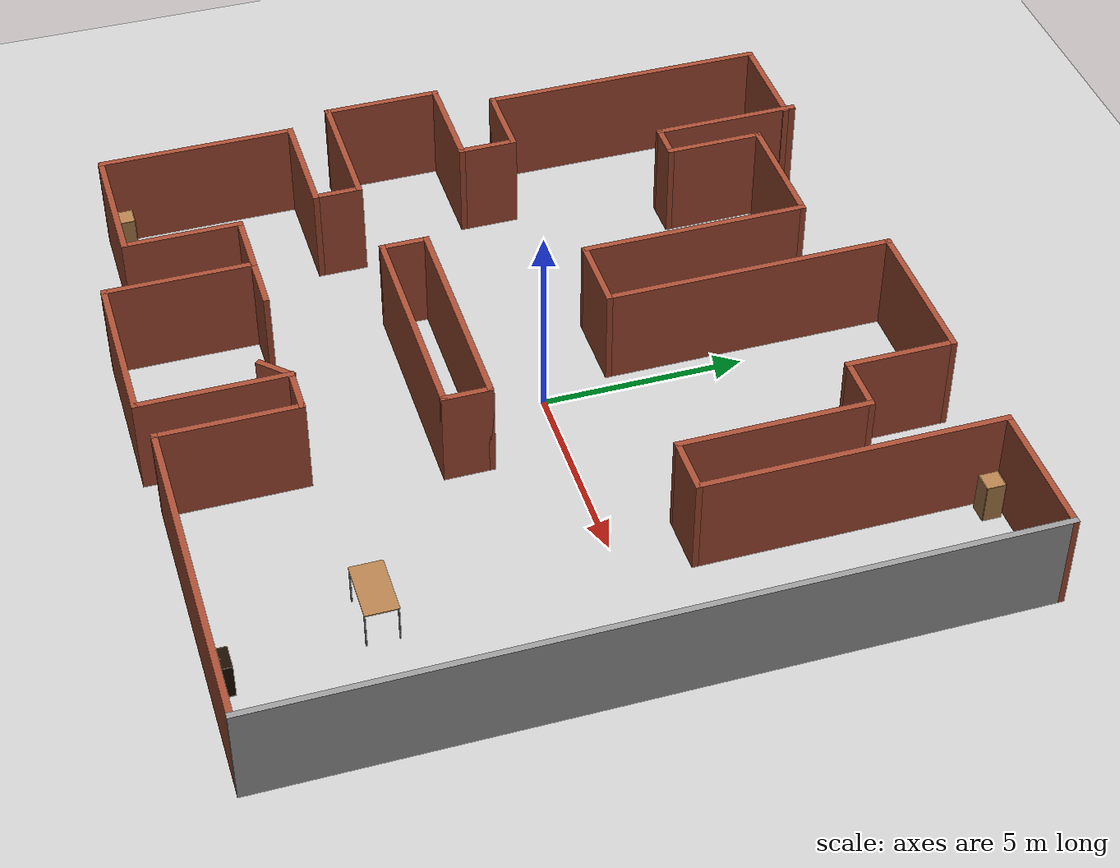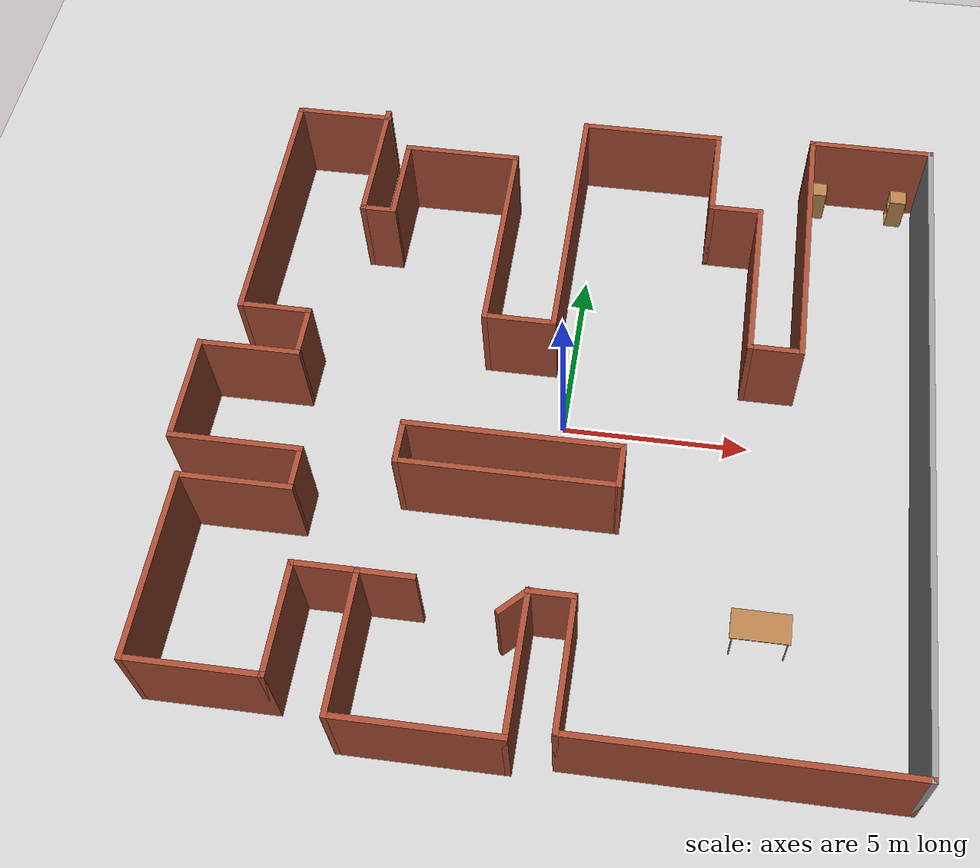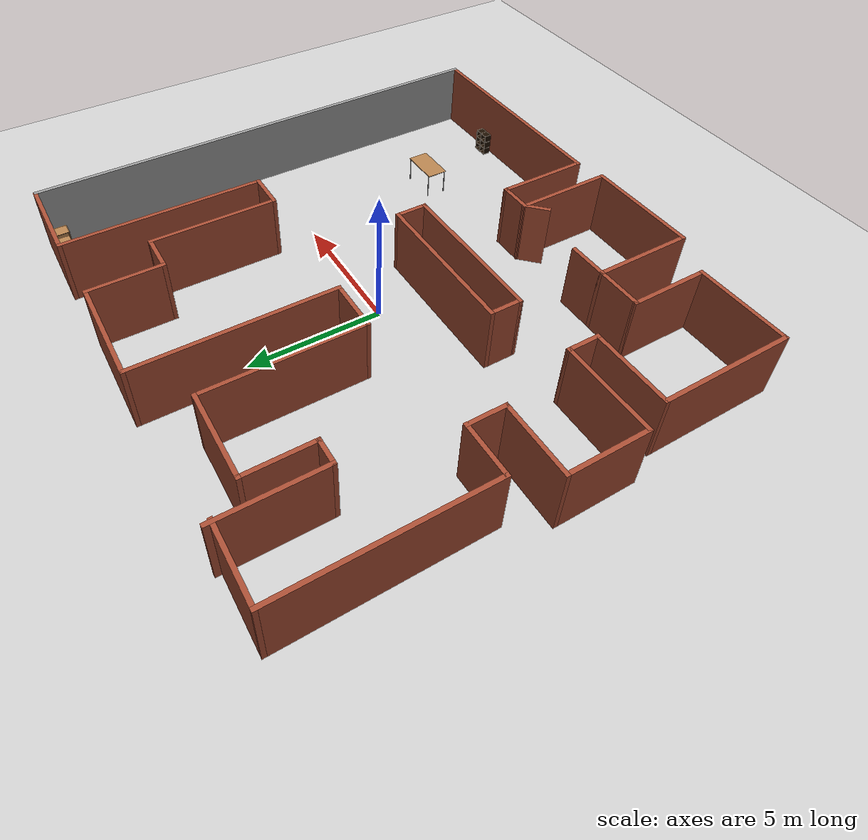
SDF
<sdf version="1.6">
 <world name="default">
  <light name="sun" type="directional">
   <pose>0 0 10 0 -0 0</pose>
   <diffuse>0.8 0.8 0.8 1</diffuse>
   <specular>0.2 0.2 0.2 1</specular>
   <attenuation>
    <range>1000</range>
    <constant>0.9</constant>
    <linear>0.01</linear>
    <quadratic>0.001</quadratic>
   </attenuation>
   <direction>-0.5 0.1 -0.9</direction>
  </light>
  <model name="ground_plane">
   <static>1</static>
   <link name="link">
    <collision name="collision">
     <geometry><plane><normal>0 0 1</normal><size>100 100</size></plane></geometry>
     <surface>
      <contact><collide_bitmask>65535</collide_bitmask></contact>
      <friction><ode><mu>100</mu><mu2>50</mu2></ode></friction>
     </surface>
    </collision>
    <visual name="visual">
     <cast_shadows>0</cast_shadows>
     <geometry><plane><normal>0 0 1</normal><size>100 100</size></plane></geometry>
     <material>
      <script><uri>file://media/materials/scripts/gazebo.material</uri><name>Gazebo/Grey</name></script>
     </material>
    </visual>
   </link>
  </model>
  <gravity>0 0 -9.8</gravity>
  <magnetic_field>6e-06 2.3e-05 -4.2e-05</magnetic_field>
  <atmosphere type="adiabatic"/>
  <physics name="default_physics" default="0" type="ode">
   <max_step_size>0.001</max_step_size>
   <real_time_factor>1</real_time_factor>
   <real_time_update_rate>1000</real_time_update_rate>
  </physics>
  <scene><ambient>0.4 0.4 0.4 1</ambient><background>0.7 0.7 0.7 1</background><shadows>1</shadows></scene>
  <audio><device>default</device></audio>
  <spherical_coordinates>
   <surface_model>EARTH_WGS84</surface_model>
   <latitude_deg>0</latitude_deg>
   <longitude_deg>0</longitude_deg>
   <elevation>0</elevation>
   <heading_deg>0</heading_deg>
  </spherical_coordinates>
  <model name="map_106">
   <pose>-0.088258 -0.297184 0 0 -0 0</pose>
   <link name="Wall_16">
    <collision name="Wall_16_Collision">
     <geometry><box><size>7.25 0.15 2.5</size></box></geometry>
     <pose>0 0 1.25 0 -0 0</pose>
    </collision>
    <visual name="Wall_16_Visual">
     <pose>0 0 1.25 0 -0 0</pose>
     <geometry><box><size>7.25 0.15 2.5</size></box></geometry>
     <material>
      <script><uri>file://media/materials/scripts/gazebo.material</uri><name>Gazebo/Bricks</name></script>
      <ambient>1 1 1 1</ambient>
     </material>
     <meta><layer>0</layer></meta>
    </visual>
    <pose>-8.75 5.15 0 0 -0 -1.5708</pose>
   </link>
   <link name="Wall_17">
    <collision name="Wall_17_Collision">
     <geometry><box><size>2 0.15 2.5</size></box></geometry>
     <pose>0 0 1.25 0 -0 0</pose>
    </collision>
    <visual name="Wall_17_Visual">
     <pose>0 0 1.25 0 -0 0</pose>
     <geometry><box><size>2 0.15 2.5</size></box></geometry>
     <material>
      <script><uri>file://media/materials/scripts/gazebo.material</uri><name>Gazebo/Bricks</name></script>
      <ambient>1 1 1 1</ambient>
     </material>
     <meta><layer>0</layer></meta>
    </visual>
    <pose>-7.825 1.6 0 0 -0 0</pose>
   </link>
   <link name="Wall_18">
    <collision name="Wall_18_Collision">
     <geometry><box><size>1.5 0.15 2.5</size></box></geometry>
     <pose>0 0 1.25 0 -0 0</pose>
    </collision>
    <visual name="Wall_18_Visual">
     <pose>0 0 1.25 0 -0 0</pose>
     <geometry><box><size>1.5 0.15 2.5</size></box></geometry>
     <material>
      <script><uri>file://media/materials/scripts/gazebo.material</uri><name>Gazebo/Bricks</name></script>
      <ambient>1 1 1 1</ambient>
     </material>
     <meta><layer>0</layer></meta>
    </visual>
    <pose>-6.9 0.924999 0 0 -0 -1.5708</pose>
   </link>
   <link name="Wall_19">
    <collision name="Wall_19_Collision">
     <geometry><box><size>2.75 0.15 2.5</size></box></geometry>
     <pose>0 0 1.25 0 -0 0</pose>
    </collision>
    <visual name="Wall_19_Visual">
     <pose>0 0 1.25 0 -0 0</pose>
     <geometry><box><size>2.75 0.15 2.5</size></box></geometry>
     <material>
      <script><uri>file://media/materials/scripts/gazebo.material</uri><name>Gazebo/Bricks</name></script>
      <ambient>1 1 1 1</ambient>
     </material>
     <meta><layer>0</layer></meta>
    </visual>
    <pose>-8.2 0.249999 0 0 -0 3.14159</pose>
   </link>
   <link name="Wall_20">
    <collision name="Wall_20_Collision">
     <geometry><box><size>3 0.15 2.5</size></box></geometry>
     <pose>0 0 1.25 0 -0 0</pose>
    </collision>
    <visual name="Wall_20_Visual">
     <pose>0 0 1.25 0 -0 0</pose>
     <geometry><box><size>3 0.15 2.5</size></box></geometry>
     <material>
      <script><uri>file://media/materials/scripts/gazebo.material</uri><name>Gazebo/Bricks</name></script>
      <ambient>1 1 1 1</ambient>
     </material>
     <meta><layer>0</layer></meta>
    </visual>
    <pose>-9.5 -1.175 0 0 -0 -1.5708</pose>
   </link>
   <link name="Wall_21">
    <collision name="Wall_21_Collision">
     <geometry><box><size>3.5 0.15 2.5</size></box></geometry>
     <pose>0 0 1.25 0 -0 0</pose>
    </collision>
    <visual name="Wall_21_Visual">
     <pose>0 0 1.25 0 -0 0</pose>
     <geometry><box><size>3.5 0.15 2.5</size></box></geometry>
     <material>
      <script><uri>file://media/materials/scripts/gazebo.material</uri><name>Gazebo/Bricks</name></script>
      <ambient>1 1 1 1</ambient>
     </material>
     <meta><layer>0</layer></meta>
    </visual>
    <pose>-7.825 -2.6 0 0 -0 0</pose>
   </link>
   <link name="Wall_22">
    <collision name="Wall_22_Collision">
     <geometry><box><size>1.25 0.15 2.5</size></box></geometry>
     <pose>0 0 1.25 0 -0 0</pose>
    </collision>
    <visual name="Wall_22_Visual">
     <pose>0 0 1.25 0 -0 0</pose>
     <geometry><box><size>1.25 0.15 2.5</size></box></geometry>
     <material>
      <script><uri>file://media/materials/scripts/gazebo.material</uri><name>Gazebo/Bricks</name></script>
      <ambient>1 1 1 1</ambient>
     </material>
     <meta><layer>0</layer></meta>
    </visual>
    <pose>-6.15 -3.15 0 0 -0 -1.5708</pose>
   </link>
   <link name="Wall_25">
    <collision name="Wall_25_Collision">
     <geometry><box><size>3 0.15 2.5</size></box></geometry>
     <pose>0 0 1.25 0 -0 0</pose>
    </collision>
    <visual name="Wall_25_Visual">
     <pose>0 0 1.25 0 -0 0</pose>
     <geometry><box><size>3 0.15 2.5</size></box></geometry>
     <material>
      <script><uri>file://media/materials/scripts/gazebo.material</uri><name>Gazebo/Bricks</name></script>
      <ambient>1 1 1 1</ambient>
     </material>
     <meta><layer>0</layer></meta>
    </visual>
    <pose>-7.575 -3.7 0 0 -0 3.14159</pose>
   </link>
   <link name="Wall_26">
    <collision name="Wall_26_Collision">
     <geometry><box><size>5 0.15 2.5</size></box></geometry>
     <pose>0 0 1.25 0 -0 0</pose>
    </collision>
    <visual name="Wall_26_Visual">
     <pose>0 0 1.25 0 -0 0</pose>
     <geometry><box><size>5 0.15 2.5</size></box></geometry>
     <material>
      <script><uri>file://media/materials/scripts/gazebo.material</uri><name>Gazebo/Bricks</name></script>
      <ambient>1 1 1 1</ambient>
     </material>
     <meta><layer>0</layer></meta>
    </visual>
    <pose>-9 -6.125 0 0 -0 -1.5708</pose>
   </link>
   <link name="Wall_27">
    <collision name="Wall_27_Collision">
     <geometry><box><size>3.5 0.15 2.5</size></box></geometry>
     <pose>0 0 1.25 0 -0 0</pose>
    </collision>
    <visual name="Wall_27_Visual">
     <pose>0 0 1.25 0 -0 0</pose>
     <geometry><box><size>3.5 0.15 2.5</size></box></geometry>
     <material>
      <script><uri>file://media/materials/scripts/gazebo.material</uri><name>Gazebo/Bricks</name></script>
      <ambient>1 1 1 1</ambient>
     </material>
     <meta><layer>0</layer></meta>
    </visual>
    <pose>-7.325 -8.55 0 0 -0 0</pose>
   </link>
   <link name="Wall_28">
    <collision name="Wall_28_Collision">
     <geometry><box><size>3 0.15 2.5</size></box></geometry>
     <pose>0 0 1.25 0 -0 0</pose>
    </collision>
    <visual name="Wall_28_Visual">
     <pose>0 0 1.25 0 -0 0</pose>
     <geometry><box><size>3 0.15 2.5</size></box></geometry>
     <material>
      <script><uri>file://media/materials/scripts/gazebo.material</uri><name>Gazebo/Bricks</name></script>
      <ambient>1 1 1 1</ambient>
     </material>
     <meta><layer>0</layer></meta>
    </visual>
    <pose>-5.65 -7.125 0 0 -0 1.5708</pose>
   </link>
   <link name="Wall_29">
    <collision name="Wall_29_Collision">
     <geometry><box><size>1.75 0.15 2.5</size></box></geometry>
     <pose>0 0 1.25 0 -0 0</pose>
    </collision>
    <visual name="Wall_29_Visual">
     <pose>0 0 1.25 0 -0 0</pose>
     <geometry><box><size>1.75 0.15 2.5</size></box></geometry>
     <material>
      <script><uri>file://media/materials/scripts/gazebo.material</uri><name>Gazebo/Bricks</name></script>
      <ambient>1 1 1 1</ambient>
     </material>
     <meta><layer>0</layer></meta>
    </visual>
    <pose>-4.85 -5.7 0 0 -0 0</pose>
   </link>
   <link name="Wall_30">
    <collision name="Wall_30_Collision">
     <geometry><box><size>3.75 0.15 2.5</size></box></geometry>
     <pose>0 0 1.25 0 -0 0</pose>
    </collision>
    <visual name="Wall_30_Visual">
     <pose>0 0 1.25 0 -0 0</pose>
     <geometry><box><size>3.75 0.15 2.5</size></box></geometry>
     <material>
      <script><uri>file://media/materials/scripts/gazebo.material</uri><name>Gazebo/Bricks</name></script>
      <ambient>1 1 1 1</ambient>
     </material>
     <meta><layer>0</layer></meta>
    </visual>
    <pose>-4.05 -7.5 0 0 -0 -1.5708</pose>
   </link>
   <link name="Wall_31">
    <collision name="Wall_31_Collision">
     <geometry><box><size>4.25 0.15 2.5</size></box></geometry>
     <pose>0 0 1.25 0 -0 0</pose>
    </collision>
    <visual name="Wall_31_Visual">
     <pose>0 0 1.25 0 -0 0</pose>
     <geometry><box><size>4.25 0.15 2.5</size></box></geometry>
     <material>
      <script><uri>file://media/materials/scripts/gazebo.material</uri><name>Gazebo/Bricks</name></script>
      <ambient>1 1 1 1</ambient>
     </material>
     <meta><layer>0</layer></meta>
    </visual>
    <pose>-2 -9.3 0 0 -0 0</pose>
   </link>
   <link name="Wall_35">
    <collision name="Wall_35_Collision">
     <geometry><box><size>8.5 0.15 2.5</size></box></geometry>
     <pose>0 0 1.25 0 -0 0</pose>
    </collision>
    <visual name="Wall_35_Visual">
     <pose>0 0 1.25 0 -0 0</pose>
     <geometry><box><size>8.5 0.15 2.5</size></box></geometry>
     <material>
      <script><uri>file://media/materials/scripts/gazebo.material</uri><name>Gazebo/Bricks</name></script>
      <ambient>1 1 1 1</ambient>
     </material>
     <meta><layer>0</layer></meta>
    </visual>
    <pose>5.325 -9.05 0 0 -0 0</pose>
   </link>
   <link name="Wall_36">
    <collision name="Wall_36_Collision">
     <geometry><box><size>18.5 0.15 2.5</size></box></geometry>
     <pose>0 0 1.25 0 -0 0</pose>
    </collision>
    <visual name="Wall_36_Visual">
     <pose>0 0 1.25 0 -0 0</pose>
     <geometry><box><size>18.5 0.15 2.5</size></box></geometry>
     <material>
      <script><uri>file://media/materials/scripts/gazebo.material</uri><name>Gazebo/Grey</name></script>
      <ambient>1 1 1 1</ambient>
     </material>
     <meta><layer>0</layer></meta>
    </visual>
    <pose>9.5 0.124999 0 0 -0 1.5708</pose>
   </link>
   <link name="Wall_37">
    <collision name="Wall_37_Collision">
     <geometry><box><size>3.5 0.15 2.5</size></box></geometry>
     <pose>0 0 1.25 0 -0 0</pose>
    </collision>
    <visual name="Wall_37_Visual">
     <pose>0 0 1.25 0 -0 0</pose>
     <geometry><box><size>3.5 0.15 2.5</size></box></geometry>
     <material>
      <script><uri>file://media/materials/scripts/gazebo.material</uri><name>Gazebo/Bricks</name></script>
      <ambient>1 1 1 1</ambient>
     </material>
     <meta><layer>0</layer></meta>
    </visual>
    <pose>7.825 9.3 0 0 -0 3.14159</pose>
   </link>
   <link name="Wall_38">
    <collision name="Wall_38_Collision">
     <geometry><box><size>7.5 0.15 2.5</size></box></geometry>
     <pose>0 0 1.25 0 -0 0</pose>
    </collision>
    <visual name="Wall_38_Visual">
     <pose>0 0 1.25 0 -0 0</pose>
     <geometry><box><size>7.5 0.15 2.5</size></box></geometry>
     <material>
      <script><uri>file://media/materials/scripts/gazebo.material</uri><name>Gazebo/Bricks</name></script>
      <ambient>1 1 1 1</ambient>
     </material>
     <meta><layer>0</layer></meta>
    </visual>
    <pose>6.15 5.625 0 0 -0 -1.5708</pose>
   </link>
   <link name="Wall_39">
    <collision name="Wall_39_Collision">
     <geometry><box><size>1.5 0.15 2.5</size></box></geometry>
     <pose>0 0 1.25 0 -0 0</pose>
    </collision>
    <visual name="Wall_39_Visual">
     <pose>0 0 1.25 0 -0 0</pose>
     <geometry><box><size>1.5 0.15 2.5</size></box></geometry>
     <material>
      <script><uri>file://media/materials/scripts/gazebo.material</uri><name>Gazebo/Bricks</name></script>
      <ambient>1 1 1 1</ambient>
     </material>
     <meta><layer>0</layer></meta>
    </visual>
    <pose>5.475 1.95 0 0 -0 3.14159</pose>
   </link>
   <link name="Wall_40">
    <collision name="Wall_40_Collision">
     <geometry><box><size>4.75 0.15 2.5</size></box></geometry>
     <pose>0 0 1.25 0 -0 0</pose>
    </collision>
    <visual name="Wall_40_Visual">
     <pose>0 0 1.25 0 -0 0</pose>
     <geometry><box><size>4.75 0.15 2.5</size></box></geometry>
     <material>
      <script><uri>file://media/materials/scripts/gazebo.material</uri><name>Gazebo/Bricks</name></script>
      <ambient>1 1 1 1</ambient>
     </material>
     <meta><layer>0</layer></meta>
    </visual>
    <pose>4.8 4.25 0 0 -0 1.5708</pose>
   </link>
   <link name="Wall_41">
    <collision name="Wall_41_Collision">
     <geometry><box><size>1.5 0.15 2.5</size></box></geometry>
     <pose>0 0 1.25 0 -0 0</pose>
    </collision>
    <visual name="Wall_41_Visual">
     <pose>0 0 1.25 0 -0 0</pose>
     <geometry><box><size>1.5 0.15 2.5</size></box></geometry>
     <material>
      <script><uri>file://media/materials/scripts/gazebo.material</uri><name>Gazebo/Bricks</name></script>
      <ambient>1 1 1 1</ambient>
     </material>
     <meta><layer>0</layer></meta>
    </visual>
    <pose>4.125 6.55 0 0 -0 3.14159</pose>
   </link>
   <link name="Wall_42">
    <collision name="Wall_42_Collision">
     <geometry><box><size>2.75 0.15 2.5</size></box></geometry>
     <pose>0 0 1.25 0 -0 0</pose>
    </collision>
    <visual name="Wall_42_Visual">
     <pose>0 0 1.25 0 -0 0</pose>
     <geometry><box><size>2.75 0.15 2.5</size></box></geometry>
     <material>
      <script><uri>file://media/materials/scripts/gazebo.material</uri><name>Gazebo/Bricks</name></script>
      <ambient>1 1 1 1</ambient>
     </material>
     <meta><layer>0</layer></meta>
    </visual>
    <pose>3.45 7.85 0 0 -0 1.5708</pose>
   </link>
   <link name="Wall_43">
    <collision name="Wall_43_Collision">
     <geometry><box><size>4 0.15 2.5</size></box></geometry>
     <pose>0 0 1.25 0 -0 0</pose>
    </collision>
    <visual name="Wall_43_Visual">
     <pose>0 0 1.25 0 -0 0</pose>
     <geometry><box><size>4 0.15 2.5</size></box></geometry>
     <material>
      <script><uri>file://media/materials/scripts/gazebo.material</uri><name>Gazebo/Bricks</name></script>
      <ambient>1 1 1 1</ambient>
     </material>
     <meta><layer>0</layer></meta>
    </visual>
    <pose>1.525 9.15 0 0 -0 3.14159</pose>
   </link>
   <link name="Wall_67">
    <collision name="Wall_67_Collision">
     <geometry><box><size>3.75 0.15 2.5</size></box></geometry>
     <pose>0 0 1.25 0 -0 0</pose>
    </collision>
    <visual name="Wall_67_Visual">
     <pose>0 0 1.25 0 -0 0</pose>
     <geometry><box><size>3.75 0.15 2.5</size></box></geometry>
     <material>
      <script><uri>file://media/materials/scripts/gazebo.material</uri><name>Gazebo/Bricks</name></script>
      <ambient>1 1 1 1</ambient>
     </material>
     <meta><layer>0</layer></meta>
    </visual>
    <pose>0.05 -7.5 0 0 -0 1.5708</pose>
   </link>
   <link name="Wall_68">
    <collision name="Wall_68_Collision">
     <geometry><box><size>1.25 0.15 2.5</size></box></geometry>
     <pose>0 0 1.25 0 -0 0</pose>
    </collision>
    <visual name="Wall_68_Visual">
     <pose>0 0 1.25 0 -0 0</pose>
     <geometry><box><size>1.25 0.15 2.5</size></box></geometry>
     <material>
      <script><uri>file://media/materials/scripts/gazebo.material</uri><name>Gazebo/Bricks</name></script>
      <ambient>1 1 1 1</ambient>
     </material>
     <meta><layer>0</layer></meta>
    </visual>
    <pose>0.6 -5.7 0 0 -0 0</pose>
   </link>
   <link name="Wall_69">
    <collision name="Wall_69_Collision">
     <geometry><box><size>3.5 0.15 2.5</size></box></geometry>
     <pose>0 0 1.25 0 -0 0</pose>
    </collision>
    <visual name="Wall_69_Visual">
     <pose>0 0 1.25 0 -0 0</pose>
     <geometry><box><size>3.5 0.15 2.5</size></box></geometry>
     <material>
      <script><uri>file://media/materials/scripts/gazebo.material</uri><name>Gazebo/Bricks</name></script>
      <ambient>1 1 1 1</ambient>
     </material>
     <meta><layer>0</layer></meta>
    </visual>
    <pose>1.15 -7.375 0 0 -0 -1.5708</pose>
   </link>
   <link name="Wall_73">
    <collision name="Wall_73_Collision">
     <geometry><box><size>7.25 0.15 2.5</size></box></geometry>
     <pose>0 0 1.25 0 -0 0</pose>
    </collision>
    <visual name="Wall_73_Visual">
     <pose>0 0 1.25 0 -0 0</pose>
     <geometry><box><size>7.25 0.15 2.5</size></box></geometry>
     <material>
      <script><uri>file://media/materials/scripts/gazebo.material</uri><name>Gazebo/Bricks</name></script>
      <ambient>1 1 1 1</ambient>
     </material>
     <meta><layer>0</layer></meta>
    </visual>
    <pose>-0.4 5.6 0 0 -0 -1.5708</pose>
   </link>
   <link name="Wall_74">
    <collision name="Wall_74_Collision">
     <geometry><box><size>2 0.15 2.5</size></box></geometry>
     <pose>0 0 1.25 0 -0 0</pose>
    </collision>
    <visual name="Wall_74_Visual">
     <pose>0 0 1.25 0 -0 0</pose>
     <geometry><box><size>2 0.15 2.5</size></box></geometry>
     <material>
      <script><uri>file://media/materials/scripts/gazebo.material</uri><name>Gazebo/Bricks</name></script>
      <ambient>1 1 1 1</ambient>
     </material>
     <meta><layer>0</layer></meta>
    </visual>
    <pose>-1.325 2.05 0 0 -0 3.14159</pose>
   </link>
   <link name="Wall_75">
    <collision name="Wall_75_Collision">
     <geometry><box><size>5.75 0.15 2.5</size></box></geometry>
     <pose>0 0 1.25 0 -0 0</pose>
    </collision>
    <visual name="Wall_75_Visual">
     <pose>0 0 1.25 0 -0 0</pose>
     <geometry><box><size>5.75 0.15 2.5</size></box></geometry>
     <material>
      <script><uri>file://media/materials/scripts/gazebo.material</uri><name>Gazebo/Bricks</name></script>
      <ambient>1 1 1 1</ambient>
     </material>
     <meta><layer>0</layer></meta>
    </visual>
    <pose>-2.25 4.85 0 0 -0 1.5708</pose>
   </link>
   <link name="Wall_76">
    <collision name="Wall_76_Collision">
     <geometry><box><size>3.25 0.15 2.5</size></box></geometry>
     <pose>0 0 1.25 0 -0 0</pose>
    </collision>
    <visual name="Wall_76_Visual">
     <pose>0 0 1.25 0 -0 0</pose>
     <geometry><box><size>3.25 0.15 2.5</size></box></geometry>
     <material>
      <script><uri>file://media/materials/scripts/gazebo.material</uri><name>Gazebo/Bricks</name></script>
      <ambient>1 1 1 1</ambient>
     </material>
     <meta><layer>0</layer></meta>
    </visual>
    <pose>-3.8 7.65 0 0 -0 3.14159</pose>
   </link>
   <link name="Wall_77">
    <collision name="Wall_77_Collision">
     <geometry><box><size>2.5 0.15 2.5</size></box></geometry>
     <pose>0 0 1.25 0 -0 0</pose>
    </collision>
    <visual name="Wall_77_Visual">
     <pose>0 0 1.25 0 -0 0</pose>
     <geometry><box><size>2.5 0.15 2.5</size></box></geometry>
     <material>
      <script><uri>file://media/materials/scripts/gazebo.material</uri><name>Gazebo/Bricks</name></script>
      <ambient>1 1 1 1</ambient>
     </material>
     <meta><layer>0</layer></meta>
    </visual>
    <pose>-5.35 6.475 0 0 -0 -1.5708</pose>
   </link>
   <link name="Wall_80">
    <collision name="Wall_80_Collision">
     <geometry><box><size>1 0.15 2.5</size></box></geometry>
     <pose>0 0 1.25 0 -0 0</pose>
    </collision>
    <visual name="Wall_80_Visual">
     <pose>0 0 1.25 0 -0 0</pose>
     <geometry><box><size>1 0.15 2.5</size></box></geometry>
     <material>
      <script><uri>file://media/materials/scripts/gazebo.material</uri><name>Gazebo/Bricks</name></script>
      <ambient>1 1 1 1</ambient>
     </material>
     <meta><layer>0</layer></meta>
    </visual>
    <pose>-5.775 5.3 0 0 -0 3.14159</pose>
   </link>
   <link name="Wall_81">
    <collision name="Wall_81_Collision">
     <geometry><box><size>3.75 0.15 2.5</size></box></geometry>
     <pose>0 0 1.25 0 -0 0</pose>
    </collision>
    <visual name="Wall_81_Visual">
     <pose>0 0 1.25 0 -0 0</pose>
     <geometry><box><size>3.75 0.15 2.5</size></box></geometry>
     <material>
      <script><uri>file://media/materials/scripts/gazebo.material</uri><name>Gazebo/Bricks</name></script>
      <ambient>1 1 1 1</ambient>
     </material>
     <meta><layer>0</layer></meta>
    </visual>
    <pose>-6.2 7.1 0 0 -0 1.5708</pose>
   </link>
   <link name="Wall_83">
    <collision name="Wall_83_Collision">
     <geometry><box><size>2.75 0.15 2.5</size></box></geometry>
     <pose>0 0 1.25 0 -0 0</pose>
    </collision>
    <visual name="Wall_83_Visual">
     <pose>0 0 1.25 0 -0 0</pose>
     <geometry><box><size>2.75 0.15 2.5</size></box></geometry>
     <material>
      <script><uri>file://media/materials/scripts/gazebo.material</uri><name>Gazebo/Bricks</name></script>
      <ambient>1 1 1 1</ambient>
     </material>
     <meta><layer>0</layer></meta>
    </visual>
    <pose>-7.45 8.7 0 0 -0 0</pose>
   </link>
   <link name="Wall_85">
    <collision name="Wall_85_Collision">
     <geometry><box><size>1.5 0.15 2.5</size></box></geometry>
     <pose>0 0 1.25 0 -0 0</pose>
    </collision>
    <visual name="Wall_85_Visual">
     <pose>0 0 1.25 0 -0 0</pose>
     <geometry><box><size>1.5 0.15 2.5</size></box></geometry>
     <material>
      <script><uri>file://media/materials/scripts/gazebo.material</uri><name>Gazebo/Bricks</name></script>
      <ambient>1 1 1 1</ambient>
     </material>
     <meta><layer>0</layer></meta>
    </visual>
    <pose>-3.375 -5.7 0 0 -0 0</pose>
   </link>
   <link name="Wall_87">
    <collision name="Wall_87_Collision">
     <geometry><box><size>1 0.15 2.5</size></box></geometry>
     <pose>0 0 1.25 0 -0 0</pose>
    </collision>
    <visual name="Wall_87_Visual">
     <pose>0 0 1.25 0 -0 0</pose>
     <geometry><box><size>1 0.15 2.5</size></box></geometry>
     <material>
      <script><uri>file://media/materials/scripts/gazebo.material</uri><name>Gazebo/Bricks</name></script>
      <ambient>1 1 1 1</ambient>
     </material>
     <meta><layer>0</layer></meta>
    </visual>
    <pose>-0.25052 -6.00052 0 0 -0 -2.35619</pose>
   </link>
   <link name="Wall_89">
    <collision name="Wall_89_Collision">
     <geometry><box><size>1.25 0.15 2.5</size></box></geometry>
     <pose>0 0 1.25 0 -0 0</pose>
    </collision>
    <visual name="Wall_89_Visual">
     <pose>0 0 1.25 0 -0 0</pose>
     <geometry><box><size>1.25 0.15 2.5</size></box></geometry>
     <material>
      <script><uri>file://media/materials/scripts/gazebo.material</uri><name>Gazebo/Bricks</name></script>
      <ambient>1 1 1 1</ambient>
     </material>
     <meta><layer>0</layer></meta>
    </visual>
    <pose>-3.74847 -2.05408 0 0 -0 -1.5708</pose>
   </link>
   <link name="Wall_90">
    <collision name="Wall_90_Collision">
     <geometry><box><size>5.75 0.15 2.5</size></box></geometry>
     <pose>0 0 1.25 0 -0 0</pose>
    </collision>
    <visual name="Wall_90_Visual">
     <pose>0 0 1.25 0 -0 0</pose>
     <geometry><box><size>5.75 0.15 2.5</size></box></geometry>
     <material>
      <script><uri>file://media/materials/scripts/gazebo.material</uri><name>Gazebo/Bricks</name></script>
      <ambient>1 1 1 1</ambient>
     </material>
     <meta><layer>0</layer></meta>
    </visual>
    <pose>-0.948472 -2.60408 0 0 -0 0</pose>
   </link>
   <link name="Wall_91">
    <collision name="Wall_91_Collision">
     <geometry><box><size>1.25 0.15 2.5</size></box></geometry>
     <pose>0 0 1.25 0 -0 0</pose>
    </collision>
    <visual name="Wall_91_Visual">
     <pose>0 0 1.25 0 -0 0</pose>
     <geometry><box><size>1.25 0.15 2.5</size></box></geometry>
     <material>
      <script><uri>file://media/materials/scripts/gazebo.material</uri><name>Gazebo/Bricks</name></script>
      <ambient>1 1 1 1</ambient>
     </material>
     <meta><layer>0</layer></meta>
    </visual>
    <pose>1.85153 -2.05408 0 0 -0 1.5708</pose>
   </link>
   <link name="Wall_92">
    <collision name="Wall_92_Collision">
     <geometry><box><size>5.75 0.15 2.5</size></box></geometry>
     <pose>0 0 1.25 0 -0 0</pose>
    </collision>
    <visual name="Wall_92_Visual">
     <pose>0 0 1.25 0 -0 0</pose>
     <geometry><box><size>5.75 0.15 2.5</size></box></geometry>
     <material>
      <script><uri>file://media/materials/scripts/gazebo.material</uri><name>Gazebo/Bricks</name></script>
      <ambient>1 1 1 1</ambient>
     </material>
     <meta><layer>0</layer></meta>
    </visual>
    <pose>-0.948472 -1.50408 0 0 -0 3.14159</pose>
   </link>
   <static>1</static>
  </model>
  <model name="cabinet">
   <static>1</static>
   <link name="cabinet_bottom_plate">
    <inertial>
     <pose>0 0 -1 0 -0 0</pose>
     <inertia><ixx>2.05</ixx><ixy>0</ixy><ixz>0</ixz><iyy>2.05</iyy><iyz>0</iyz><izz>2.05</izz></inertia>
     <mass>25</mass>
    </inertial>
    <collision name="cabinet_bottom_plate_geom">
     <pose>0 0 0.01 0 -0 0</pose>
     <geometry><box><size>0.45 0.45 0.02</size></box></geometry>
    </collision>
    <visual name="cabinet_bottom_plate_geom_visual">
     <pose>0 0 0.01 0 -0 0</pose>
     <geometry><box><size>0.45 0.45 0.02</size></box></geometry>
     <material>
      <script><uri>file://media/materials/scripts/gazebo.material</uri><name>Gazebo/Wood</name></script>
     </material>
    </visual>
    <collision name="cabinet_bottom_plate_geom_cabinet_back_plate">
     <pose>0.235 0 0.51 0 -0 0</pose>
     <geometry><box><size>0.02 0.45 1.02</size></box></geometry>
    </collision>
    <visual name="cabinet_bottom_plate_geom_cabinet_back_plate_visual">
     <pose>0.235 0 0.51 0 -0 0</pose>
     <geometry><box><size>0.02 0.45 1.02</size></box></geometry>
     <material>
      <script><uri>file://media/materials/scripts/gazebo.material</uri><name>Gazebo/Wood</name></script>
     </material>
    </visual>
    <collision name="cabinet_bottom_plate_geom_cabinet_left_plate">
     <pose>0 0.235 0.51 0 -0 0</pose>
     <geometry><box><size>0.45 0.02 1.02</size></box></geometry>
    </collision>
    <visual name="cabinet_bottom_plate_geom_cabinet_left_plate_visual">
     <pose>0 0.235 0.51 0 -0 0</pose>
     <geometry><box><size>0.45 0.02 1.02</size></box></geometry>
     <material>
      <script><uri>file://media/materials/scripts/gazebo.material</uri><name>Gazebo/Wood</name></script>
     </material>
    </visual>
    <collision name="cabinet_bottom_plate_geom_cabinet_middle_plate">
     <pose>0 0 0.51 0 -0 0</pose>
     <geometry><box><size>0.45 0.45 0.02</size></box></geometry>
    </collision>
    <visual name="cabinet_bottom_plate_geom_cabinet_middle_plate_visual">
     <pose>0 0 0.51 0 -0 0</pose>
     <geometry><box><size>0.45 0.45 0.02</size></box></geometry>
     <material>
      <script><uri>file://media/materials/scripts/gazebo.material</uri><name>Gazebo/Wood</name></script>
     </material>
    </visual>
    <collision name="cabinet_bottom_plate_geom_cabinet_right_plate">
     <pose>0 -0.235 0.51 0 -0 0</pose>
     <geometry><box><size>0.45 0.02 1.02</size></box></geometry>
    </collision>
    <visual name="cabinet_bottom_plate_geom_cabinet_right_plate_visual">
     <pose>0 -0.235 0.51 0 -0 0</pose>
     <geometry><box><size>0.45 0.02 1.02</size></box></geometry>
     <material>
      <script><uri>file://media/materials/scripts/gazebo.material</uri><name>Gazebo/Wood</name></script>
     </material>
    </visual>
    <collision name="cabinet_bottom_plate_geom_cabinet_top_plate">
     <pose>0 0 1.01 0 -0 0</pose>
     <geometry><box><size>0.45 0.45 0.02</size></box></geometry>
    </collision>
    <visual name="cabinet_bottom_plate_geom_cabinet_top_plate_visual">
     <pose>0 0 1.01 0 -0 0</pose>
     <geometry><box><size>0.45 0.45 0.02</size></box></geometry>
     <material>
      <script><uri>file://media/materials/scripts/gazebo.material</uri><name>Gazebo/Wood</name></script>
     </material>
    </visual>
   </link>
   <pose>-8.69778 -8.50225 0 0 -0 0</pose>
  </model>
  <model name="cabinet_0">
   <static>1</static>
   <link name="cabinet_bottom_plate">
    <inertial>
     <pose>0 0 -1 0 -0 0</pose>
     <inertia><ixx>2.05</ixx><ixy>0</ixy><ixz>0</ixz><iyy>2.05</iyy><iyz>0</iyz><izz>2.05</izz></inertia>
     <mass>25</mass>
    </inertial>
    <collision name="cabinet_bottom_plate_geom">
     <pose>0 0 0.01 0 -0 0</pose>
     <geometry><box><size>0.45 0.45 0.02</size></box></geometry>
    </collision>
    <visual name="cabinet_bottom_plate_geom_visual">
     <pose>0 0 0.01 0 -0 0</pose>
     <geometry><box><size>0.45 0.45 0.02</size></box></geometry>
     <material>
      <script><uri>file://media/materials/scripts/gazebo.material</uri><name>Gazebo/Wood</name></script>
     </material>
    </visual>
    <collision name="cabinet_bottom_plate_geom_cabinet_back_plate">
     <pose>0.235 0 0.51 0 -0 0</pose>
     <geometry><box><size>0.02 0.45 1.02</size></box></geometry>
    </collision>
    <visual name="cabinet_bottom_plate_geom_cabinet_back_plate_visual">
     <pose>0.235 0 0.51 0 -0 0</pose>
     <geometry><box><size>0.02 0.45 1.02</size></box></geometry>
     <material>
      <script><uri>file://media/materials/scripts/gazebo.material</uri><name>Gazebo/Wood</name></script>
     </material>
    </visual>
    <collision name="cabinet_bottom_plate_geom_cabinet_left_plate">
     <pose>0 0.235 0.51 0 -0 0</pose>
     <geometry><box><size>0.45 0.02 1.02</size></box></geometry>
    </collision>
    <visual name="cabinet_bottom_plate_geom_cabinet_left_plate_visual">
     <pose>0 0.235 0.51 0 -0 0</pose>
     <geometry><box><size>0.45 0.02 1.02</size></box></geometry>
     <material>
      <script><uri>file://media/materials/scripts/gazebo.material</uri><name>Gazebo/Wood</name></script>
     </material>
    </visual>
    <collision name="cabinet_bottom_plate_geom_cabinet_middle_plate">
     <pose>0 0 0.51 0 -0 0</pose>
     <geometry><box><size>0.45 0.45 0.02</size></box></geometry>
    </collision>
    <visual name="cabinet_bottom_plate_geom_cabinet_middle_plate_visual">
     <pose>0 0 0.51 0 -0 0</pose>
     <geometry><box><size>0.45 0.45 0.02</size></box></geometry>
     <material>
      <script><uri>file://media/materials/scripts/gazebo.material</uri><name>Gazebo/Wood</name></script>
     </material>
    </visual>
    <collision name="cabinet_bottom_plate_geom_cabinet_right_plate">
     <pose>0 -0.235 0.51 0 -0 0</pose>
     <geometry><box><size>0.45 0.02 1.02</size></box></geometry>
    </collision>
    <visual name="cabinet_bottom_plate_geom_cabinet_right_plate_visual">
     <pose>0 -0.235 0.51 0 -0 0</pose>
     <geometry><box><size>0.45 0.02 1.02</size></box></geometry>
     <material>
      <script><uri>file://media/materials/scripts/gazebo.material</uri><name>Gazebo/Wood</name></script>
     </material>
    </visual>
    <collision name="cabinet_bottom_plate_geom_cabinet_top_plate">
     <pose>0 0 1.01 0 -0 0</pose>
     <geometry><box><size>0.45 0.45 0.02</size></box></geometry>
    </collision>
    <visual name="cabinet_bottom_plate_geom_cabinet_top_plate_visual">
     <pose>0 0 1.01 0 -0 0</pose>
     <geometry><box><size>0.45 0.45 0.02</size></box></geometry>
     <material>
      <script><uri>file://media/materials/scripts/gazebo.material</uri><name>Gazebo/Wood</name></script>
     </material>
    </visual>
   </link>
   <pose>6.45809 8.61592 0 0 -0 0</pose>
  </model>
  <model name="cabinet_1">
   <static>1</static>
   <link name="cabinet_bottom_plate">
    <inertial>
     <pose>0 0 -1 0 -0 0</pose>
     <inertia><ixx>2.05</ixx><ixy>0</ixy><ixz>0</ixz><iyy>2.05</iyy><iyz>0</iyz><izz>2.05</izz></inertia>
     <mass>25</mass>
    </inertial>
    <collision name="cabinet_bottom_plate_geom">
     <pose>0 0 0.01 0 -0 0</pose>
     <geometry><box><size>0.45 0.45 0.02</size></box></geometry>
    </collision>
    <visual name="cabinet_bottom_plate_geom_visual">
     <pose>0 0 0.01 0 -0 0</pose>
     <geometry><box><size>0.45 0.45 0.02</size></box></geometry>
     <material>
      <script><uri>file://media/materials/scripts/gazebo.material</uri><name>Gazebo/Wood</name></script>
     </material>
    </visual>
    <collision name="cabinet_bottom_plate_geom_cabinet_back_plate">
     <pose>0.235 0 0.51 0 -0 0</pose>
     <geometry><box><size>0.02 0.45 1.02</size></box></geometry>
    </collision>
    <visual name="cabinet_bottom_plate_geom_cabinet_back_plate_visual">
     <pose>0.235 0 0.51 0 -0 0</pose>
     <geometry><box><size>0.02 0.45 1.02</size></box></geometry>
     <material>
      <script><uri>file://media/materials/scripts/gazebo.material</uri><name>Gazebo/Wood</name></script>
     </material>
    </visual>
    <collision name="cabinet_bottom_plate_geom_cabinet_left_plate">
     <pose>0 0.235 0.51 0 -0 0</pose>
     <geometry><box><size>0.45 0.02 1.02</size></box></geometry>
    </collision>
    <visual name="cabinet_bottom_plate_geom_cabinet_left_plate_visual">
     <pose>0 0.235 0.51 0 -0 0</pose>
     <geometry><box><size>0.45 0.02 1.02</size></box></geometry>
     <material>
      <script><uri>file://media/materials/scripts/gazebo.material</uri><name>Gazebo/Wood</name></script>
     </material>
    </visual>
    <collision name="cabinet_bottom_plate_geom_cabinet_middle_plate">
     <pose>0 0 0.51 0 -0 0</pose>
     <geometry><box><size>0.45 0.45 0.02</size></box></geometry>
    </collision>
    <visual name="cabinet_bottom_plate_geom_cabinet_middle_plate_visual">
     <pose>0 0 0.51 0 -0 0</pose>
     <geometry><box><size>0.45 0.45 0.02</size></box></geometry>
     <material>
      <script><uri>file://media/materials/scripts/gazebo.material</uri><name>Gazebo/Wood</name></script>
     </material>
    </visual>
    <collision name="cabinet_bottom_plate_geom_cabinet_right_plate">
     <pose>0 -0.235 0.51 0 -0 0</pose>
     <geometry><box><size>0.45 0.02 1.02</size></box></geometry>
    </collision>
    <visual name="cabinet_bottom_plate_geom_cabinet_right_plate_visual">
     <pose>0 -0.235 0.51 0 -0 0</pose>
     <geometry><box><size>0.45 0.02 1.02</size></box></geometry>
     <material>
      <script><uri>file://media/materials/scripts/gazebo.material</uri><name>Gazebo/Wood</name></script>
     </material>
    </visual>
    <collision name="cabinet_bottom_plate_geom_cabinet_top_plate">
     <pose>0 0 1.01 0 -0 0</pose>
     <geometry><box><size>0.45 0.45 0.02</size></box></geometry>
    </collision>
    <visual name="cabinet_bottom_plate_geom_cabinet_top_plate_visual">
     <pose>0 0 1.01 0 -0 0</pose>
     <geometry><box><size>0.45 0.45 0.02</size></box></geometry>
     <material>
      <script><uri>file://media/materials/scripts/gazebo.material</uri><name>Gazebo/Wood</name></script>
     </material>
    </visual>
   </link>
   <pose>8.77831 8.59413 0 0 -0 0</pose>
  </model>
  <model name="6_Cube_StorageE">
   <link name="Wall_0">
    <pose>0 0 0.01 0 -0 0</pose>
    <inertial>
     <mass>1.6201</mass>
     <inertia><ixx>0.0119</ixx><iyy>0.0631</iyy><izz>0.0513</izz><ixy>0</ixy><ixz>0</ixz><iyz>0</iyz></inertia>
    </inertial>
    <collision name="Wall_0_Collision"><geometry><box><size>0.616 0.296 0.02</size></box></geometry></collision>
    <visual name="Wall_0_Visual">
     <geometry><box><size>0.616 0.296 0.02</size></box></geometry>
     <material>
      <script><uri>file://media/materials/scripts/gazebo.material</uri><name>Gazebo/Grey</name></script>
      <ambient>0.105882 0.0509804 0 1</ambient>
     </material>
    </visual>
   </link>
   <joint name="0_2" type="fixed">
    <pose>-0.308 0 0 0 -0 0</pose>
    <parent>Wall_2</parent>
    <child>Wall_0</child>
    <axis>
     <xyz>1 0 0</xyz>
     <use_parent_model_frame>0</use_parent_model_frame>
     <limit><lower>-1e+16</lower><upper>1e+16</upper></limit>
    </axis>
   </joint>
   <joint name="0_12" type="fixed">
    <parent>Wall_12</parent>
    <child>Wall_0</child>
    <axis>
     <xyz>0 0 1</xyz>
     <use_parent_model_frame>0</use_parent_model_frame>
     <limit><lower>-1e+16</lower><upper>1e+16</upper></limit>
    </axis>
   </joint>
   <joint name="0_4" type="fixed">
    <pose>0.308 0 0 0 -0 0</pose>
    <parent>Wall_4</parent>
    <child>Wall_0</child>
    <axis>
     <xyz>1 0 0</xyz>
     <use_parent_model_frame>0</use_parent_model_frame>
     <limit><lower>-1e+16</lower><upper>1e+16</upper></limit>
    </axis>
   </joint>
   <link name="Wall_10">
    <pose>0 0 0.61 0 -0 0</pose>
    <inertial>
     <mass>1.6201</mass>
     <inertia><ixx>0.0119</ixx><iyy>0.0631</iyy><izz>0.0513</izz><ixy>0</ixy><ixz>0</ixz><iyz>0</iyz></inertia>
    </inertial>
    <collision name="Wall_10_Collision"><geometry><box><size>0.616 0.296 0.02</size></box></geometry></collision>
    <visual name="Wall_10_Visual">
     <geometry><box><size>0.616 0.296 0.02</size></box></geometry>
     <material>
      <script><uri>file://media/materials/scripts/gazebo.material</uri><name>Gazebo/Grey</name></script>
      <ambient>0.105882 0.0509804 0 1</ambient>
     </material>
    </visual>
   </link>
   <joint name="10_2" type="fixed">
    <pose>-0.308 0 0 0 -0 0</pose>
    <parent>Wall_2</parent>
    <child>Wall_10</child>
    <axis>
     <xyz>1 0 0</xyz>
     <use_parent_model_frame>0</use_parent_model_frame>
     <limit><lower>-1e+16</lower><upper>1e+16</upper></limit>
    </axis>
   </joint>
   <joint name="10_12" type="fixed">
    <parent>Wall_12</parent>
    <child>Wall_10</child>
    <axis>
     <xyz>0 0 1</xyz>
     <use_parent_model_frame>0</use_parent_model_frame>
     <limit><lower>-1e+16</lower><upper>1e+16</upper></limit>
    </axis>
   </joint>
   <joint name="10_4" type="fixed">
    <pose>0.308 0 0 0 -0 0</pose>
    <parent>Wall_4</parent>
    <child>Wall_10</child>
    <axis>
     <xyz>1 0 0</xyz>
     <use_parent_model_frame>0</use_parent_model_frame>
     <limit><lower>-1e+16</lower><upper>1e+16</upper></limit>
    </axis>
   </joint>
   <link name="Wall_12">
    <pose>0 0 0.4575 0 -0 0</pose>
    <inertial>
     <mass>2.4065</mass>
     <inertia><ixx>0.0177</ixx><iyy>0.1855</iyy><izz>0.168</izz><ixy>0</ixy><ixz>0</ixz><iyz>0</iyz></inertia>
    </inertial>
    <collision name="Wall_12_Collision"><geometry><box><size>0.02 0.296 0.915</size></box></geometry></collision>
    <visual name="Wall_12_Visual">
     <geometry><box><size>0.02 0.296 0.915</size></box></geometry>
     <material>
      <script><uri>file://media/materials/scripts/gazebo.material</uri><name>Gazebo/Grey</name></script>
      <ambient>0.105882 0.0509804 0 1</ambient>
     </material>
    </visual>
   </link>
   <link name="Wall_2">
    <pose>-0.298 0 0.4575 0 -0 0</pose>
    <inertial>
     <mass>2.4065</mass>
     <inertia><ixx>0.0177</ixx><iyy>0.1855</iyy><izz>0.168</izz><ixy>0</ixy><ixz>0</ixz><iyz>0</iyz></inertia>
    </inertial>
    <collision name="Wall_2_Collision"><geometry><box><size>0.02 0.296 0.915</size></box></geometry></collision>
    <visual name="Wall_2_Visual">
     <geometry><box><size>0.02 0.296 0.915</size></box></geometry>
     <material>
      <script><uri>file://media/materials/scripts/gazebo.material</uri><name>Gazebo/Grey</name></script>
      <ambient>0.105882 0.0509804 0 1</ambient>
     </material>
    </visual>
   </link>
   <link name="Wall_4">
    <pose>0.298 0 0.4575 0 -0 0</pose>
    <inertial>
     <mass>2.4065</mass>
     <inertia><ixx>0.0177</ixx><iyy>0.1855</iyy><izz>0.168</izz><ixy>0</ixy><ixz>0</ixz><iyz>0</iyz></inertia>
    </inertial>
    <collision name="Wall_4_Collision"><geometry><box><size>0.02 0.296 0.915</size></box></geometry></collision>
    <visual name="Wall_4_Visual">
     <geometry><box><size>0.02 0.296 0.915</size></box></geometry>
     <material>
      <script><uri>file://media/materials/scripts/gazebo.material</uri><name>Gazebo/Grey</name></script>
      <ambient>0.105882 0.0509804 0 1</ambient>
     </material>
    </visual>
   </link>
   <link name="Wall_6">
    <pose>0 0 0.905 0 -0 0</pose>
    <inertial>
     <mass>1.6201</mass>
     <inertia><ixx>0.0119</ixx><iyy>0.0631</iyy><izz>0.0513</izz><ixy>0</ixy><ixz>0</ixz><iyz>0</iyz></inertia>
    </inertial>
    <collision name="Wall_6_Collision"><geometry><box><size>0.616 0.296 0.02</size></box></geometry></collision>
    <visual name="Wall_6_Visual">
     <geometry><box><size>0.616 0.296 0.02</size></box></geometry>
     <material>
      <script><uri>file://media/materials/scripts/gazebo.material</uri><name>Gazebo/Grey</name></script>
      <ambient>0.105882 0.0509804 0 1</ambient>
     </material>
    </visual>
   </link>
   <joint name="6_2" type="fixed">
    <pose>-0.308 0 0 0 -0 0</pose>
    <parent>Wall_2</parent>
    <child>Wall_6</child>
    <axis>
     <xyz>2 0 0</xyz>
     <use_parent_model_frame>0</use_parent_model_frame>
     <limit><lower>-1e+16</lower><upper>1e+16</upper></limit>
    </axis>
   </joint>
   <joint name="6_12" type="fixed">
    <parent>Wall_12</parent>
    <child>Wall_6</child>
    <axis>
     <xyz>0 0 1</xyz>
     <use_parent_model_frame>0</use_parent_model_frame>
     <limit><lower>-1e+16</lower><upper>1e+16</upper></limit>
    </axis>
   </joint>
   <joint name="6_4" type="fixed">
    <pose>0.308 0 0 0 -0 0</pose>
    <parent>Wall_4</parent>
    <child>Wall_6</child>
    <axis>
     <xyz>1 0 0</xyz>
     <use_parent_model_frame>0</use_parent_model_frame>
     <limit><lower>-1e+16</lower><upper>1e+16</upper></limit>
    </axis>
   </joint>
   <link name="Wall_8">
    <pose>0 0 0.305 0 -0 0</pose>
    <inertial>
     <mass>1.6201</mass>
     <inertia><ixx>0.0119</ixx><iyy>0.0631</iyy><izz>0.0513</izz><ixy>0</ixy><ixz>0</ixz><iyz>0</iyz></inertia>
    </inertial>
    <collision name="Wall_8_Collision"><geometry><box><size>0.616 0.296 0.02</size></box></geometry></collision>
    <visual name="Wall_8_Visual">
     <geometry><box><size>0.616 0.296 0.02</size></box></geometry>
     <material>
      <script><uri>file://media/materials/scripts/gazebo.material</uri><name>Gazebo/Grey</name></script>
      <ambient>0.105882 0.0509804 0 1</ambient>
     </material>
    </visual>
   </link>
   <joint name="8_2" type="fixed">
    <pose>-0.308 0 0 0 -0 0</pose>
    <parent>Wall_2</parent>
    <child>Wall_8</child>
    <axis>
     <xyz>1 0 0</xyz>
     <use_parent_model_frame>0</use_parent_model_frame>
     <limit><lower>-1e+16</lower><upper>1e+16</upper></limit>
    </axis>
   </joint>
   <joint name="8_12" type="fixed">
    <parent>Wall_12</parent>
    <child>Wall_8</child>
    <axis>
     <xyz>0 0 1</xyz>
     <use_parent_model_frame>0</use_parent_model_frame>
     <limit><lower>-1e+16</lower><upper>1e+16</upper></limit>
    </axis>
   </joint>
   <joint name="8_4" type="fixed">
    <pose>0.308 0 0 0 -0 0</pose>
    <parent>Wall_4</parent>
    <child>Wall_8</child>
    <axis>
     <xyz>1 0 0</xyz>
     <use_parent_model_frame>0</use_parent_model_frame>
     <limit><lower>-1e+16</lower><upper>1e+16</upper></limit>
    </axis>
   </joint>
   <static>1</static>
   <pose>6.50353 -9.03669 0 0 -0 0</pose>
  </model>
  <model name="table">
   <static>1</static>
   <link name="link">
    <collision name="surface">
     <pose>0 0 1 0 -0 0</pose>
     <geometry><box><size>1.5 0.8 0.03</size></box></geometry>
     <surface><friction><ode><mu>0.6</mu><mu2>0.6</mu2></ode></friction></surface>
    </collision>
    <visual name="visual1">
     <pose>0 0 1 0 -0 0</pose>
     <geometry><box><size>1.5 0.8 0.03</size></box></geometry>
     <material>
      <script><uri>file://media/materials/scripts/gazebo.material</uri><name>Gazebo/Wood</name></script>
     </material>
    </visual>
    <collision name="front_left_leg">
     <pose>0.68 0.38 0.5 0 -0 0</pose>
     <geometry><cylinder><radius>0.02</radius><length>1</length></cylinder></geometry>
    </collision>
    <visual name="front_left_leg">
     <pose>0.68 0.38 0.5 0 -0 0</pose>
     <geometry><cylinder><radius>0.02</radius><length>1</length></cylinder></geometry>
     <material>
      <script><uri>file://media/materials/scripts/gazebo.material</uri><name>Gazebo/Grey</name></script>
     </material>
    </visual>
    <collision name="front_right_leg">
     <pose>0.68 -0.38 0.5 0 -0 0</pose>
     <geometry><cylinder><radius>0.02</radius><length>1</length></cylinder></geometry>
    </collision>
    <visual name="front_right_leg">
     <pose>0.68 -0.38 0.5 0 -0 0</pose>
     <geometry><cylinder><radius>0.02</radius><length>1</length></cylinder></geometry>
     <material>
      <script><uri>file://media/materials/scripts/gazebo.material</uri><name>Gazebo/Grey</name></script>
     </material>
    </visual>
    <collision name="back_right_leg">
     <pose>-0.68 -0.38 0.5 0 -0 0</pose>
     <geometry><cylinder><radius>0.02</radius><length>1</length></cylinder></geometry>
    </collision>
    <visual name="back_right_leg">
     <pose>-0.68 -0.38 0.5 0 -0 0</pose>
     <geometry><cylinder><radius>0.02</radius><length>1</length></cylinder></geometry>
     <material>
      <script><uri>file://media/materials/scripts/gazebo.material</uri><name>Gazebo/Grey</name></script>
     </material>
    </visual>
    <collision name="back_left_leg">
     <pose>-0.68 0.38 0.5 0 -0 0</pose>
     <geometry><cylinder><radius>0.02</radius><length>1</length></cylinder></geometry>
    </collision>
    <visual name="back_left_leg">
     <pose>-0.68 0.38 0.5 0 -0 0</pose>
     <geometry><cylinder><radius>0.02</radius><length>1</length></cylinder></geometry>
     <material>
      <script><uri>file://media/materials/scripts/gazebo.material</uri><name>Gazebo/Grey</name></script>
     </material>
    </visual>
   </link>
   <pose>5.5723 -5.53576 0 0 -0 0</pose>
  </model>
 </world>
</sdf>
